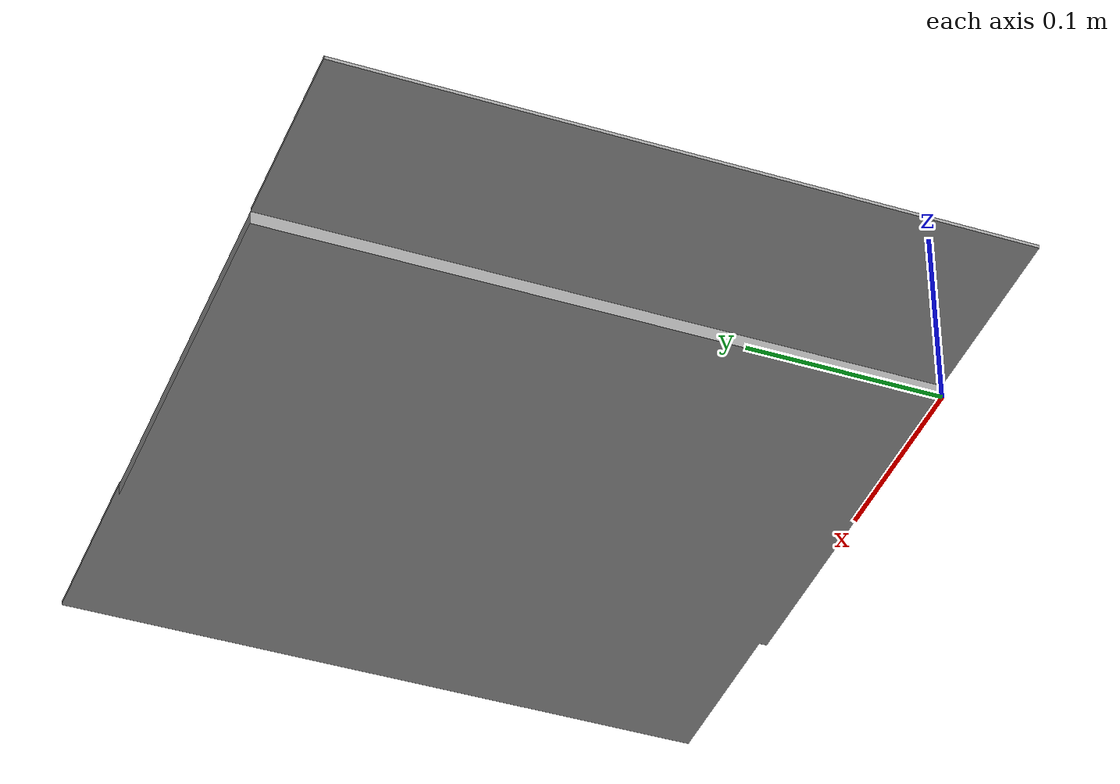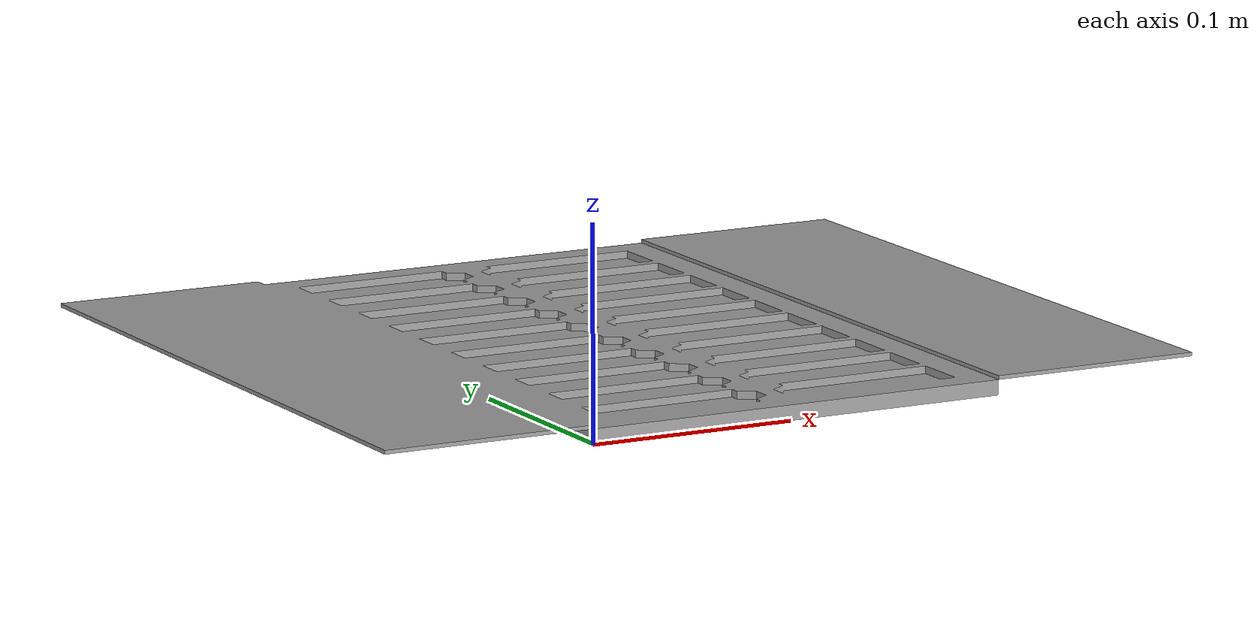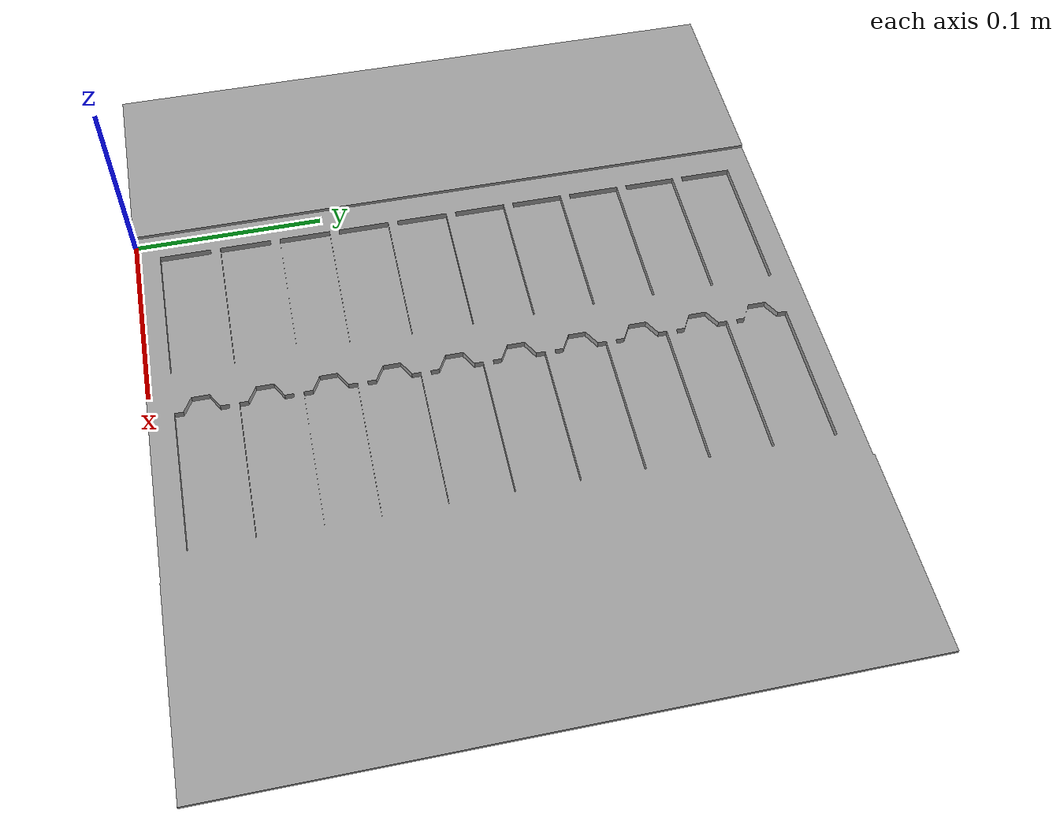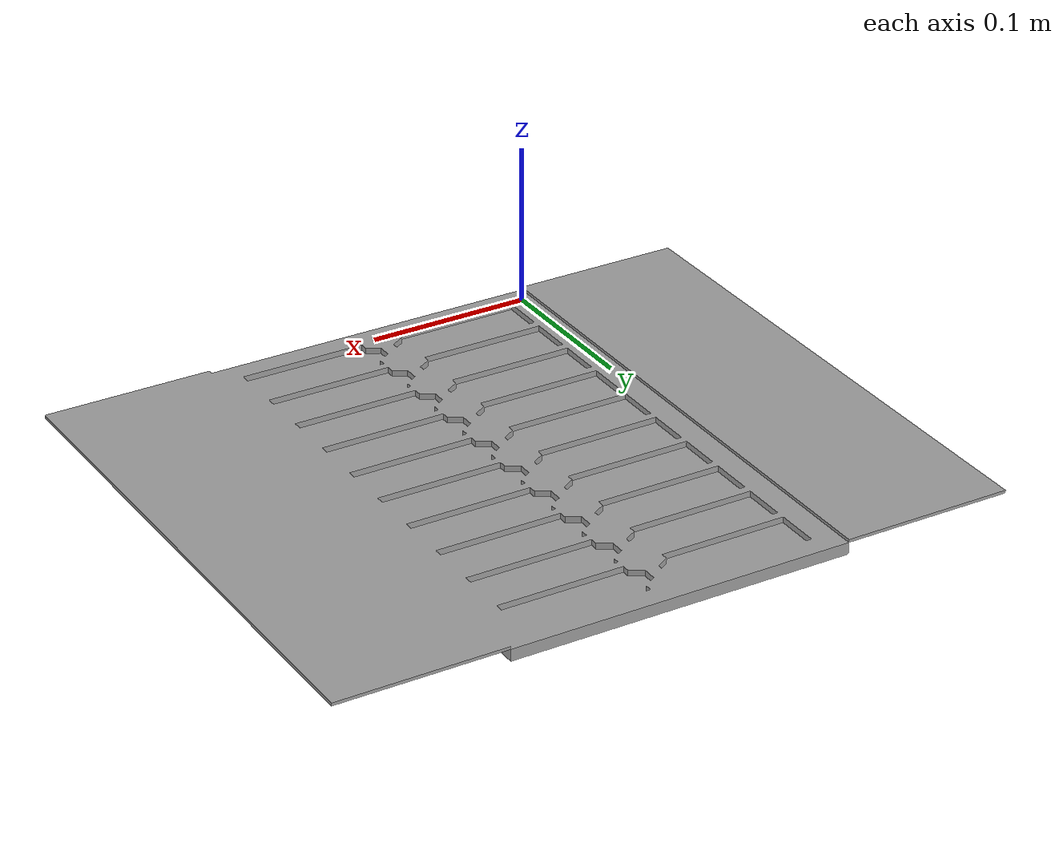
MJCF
<?xml version='1.0' encoding='utf-8'?>
<mujoco model="20-place slide folder | static asset inspection">
  <compiler angle="radian" />
  <visual>
    <global offwidth="1000" offheight="600" />
    <headlight ambient=".4 .4 .4" diffuse=".6 .6 .6" />
  </visual>
  <asset>
    <texture type="skybox" builtin="gradient" rgb1=".92 .95 .97" rgb2=".70 .78 .84" width="512" height="3072" />
    <mesh name="slide_folder_0" file="meshes/slide_folder_0.obj" inertia="shell" />
  </asset>
  <worldbody>
    <geom type="mesh" mesh="slide_folder_0" rgba="0.62745098 0.62745098 0.62745098 1" contype="0" conaffinity="0" density="0" />
  </worldbody>
</mujoco>
